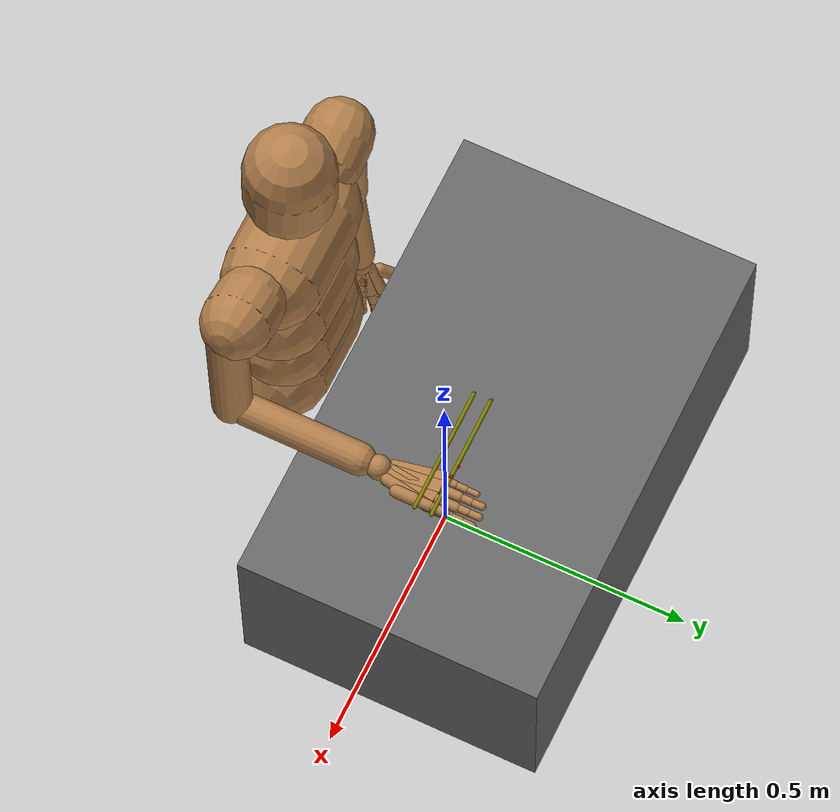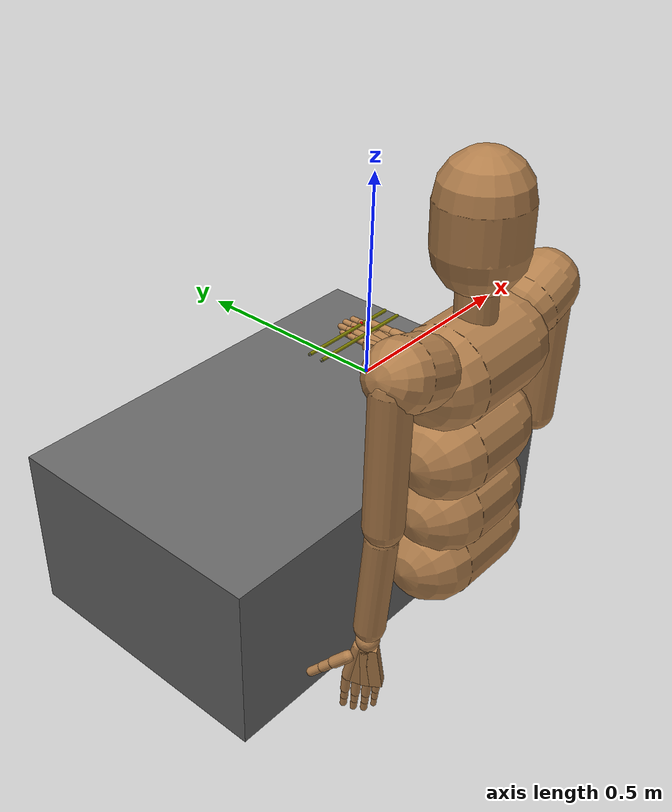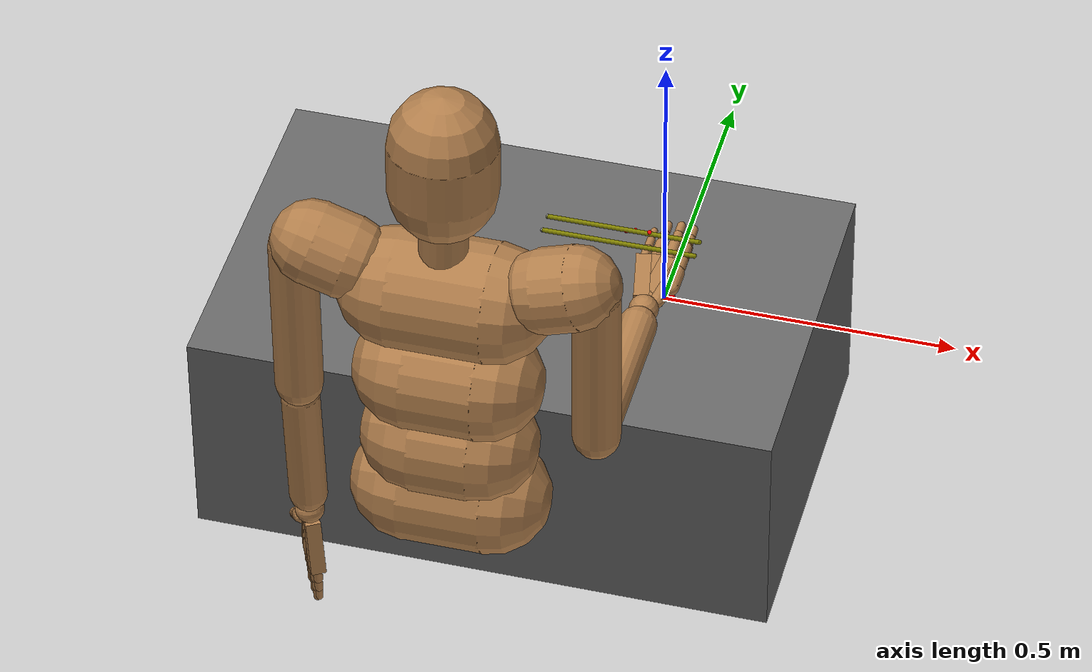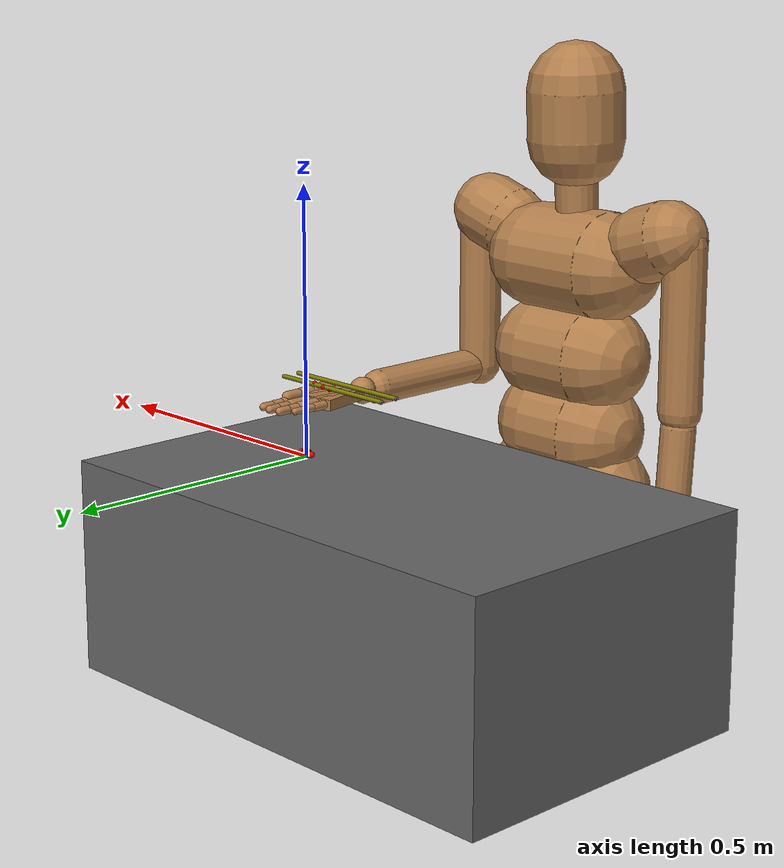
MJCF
<?xml version="1.0" encoding="utf-8"?>
<mujoco>
	<compiler angle="radian"/>
	<size njmax="400" nconmax="400" nuser_jnt="1" nuser_site="1" nuser_tendon="1" nuser_sensor="1" nuser_actuator="16" nstack="600000"/>
	<option timestep="0.01" iterations="20" apirate="200" impratio="1" noslip_iterations="100"/>
	<asset>
		<material name="self" rgba=".7 .5 .3 1"/>
		<material name="table" rgba=".4 .4 .4 1"/>
		<material name="geom" texture="texgeom" texuniform="true"/>
		<material name="MatGnd" reflectance="0.5" texture="texplane" texrepeat="2 2" texuniform="true"/>
		<material name="MatPlane" reflectance="0.05" texture="texplane" texrepeat="1 1" texuniform="true"/>
		<texture builtin="flat" height="1278" mark="cross" markrgb="1 1 1" name="texgeom" random="0.01" rgb1="0.8 0.6 0.4" rgb2="0.8 0.6 0.4" type="cube" width="127"/>
		<texture builtin="gradient" height="100" rgb1="1 1 1" rgb2="0 0 0" type="skybox" width="100"/>
		<texture name="texplane" type="2d" builtin="checker" rgb1=".2 .3 .4" rgb2=".1 0.15 0.2" width="512" height="512"/>
	</asset>
	<visual>
		<scale forcewidth="0.01" contactwidth="0.003"/>
	</visual>
	<default>
		<default class="Adroit">
			<geom friction="1 0.005 0.001" condim="3" margin="0.000" contype="1" conaffinity="1"/>
			<joint limited="true" damping="0.05" armature=".001" margin="0.01" frictionloss="0.001"/>
			<tendon limited="true"></tendon>
			<site size="0.005" rgba=".4 .9 .4 0"/>
			<default class="D_Touch">
				<site type="box" size="0.009 0.004 0.013" pos="0 -.004 .018" rgba=".8 .8 .8 0" group="4"/>
			</default>
			<default class="DC_Hand">
				<geom contype="1" conaffinity="0" material="self" group="2"/>
			</default>
		</default>
		<default class="humanoid">
			<geom type="capsule" material="self" group="2"/>
			<default class="stiff_medium">
				<joint stiffness="10" damping="2"/>
			</default>
			<default class="sensor_site">
				<site type="sphere" size="0.01" group="4" rgba="1 0 0 0"/>
			</default>
		</default>
	</default>
	<contact>
		<include file="contacts/hand_contacts.xml"/>
		<include file="contacts/hand_chopsticks_contacts.xml"/>
		<pair geom1="chopstick1_end" geom2="object_0" margin="10" gap="100"></pair>
		<pair geom1="chopstick2_end" geom2="object_0" margin="10" gap="100"></pair>
		<pair geom1="chopstick1" geom2="object_0" margin="0" gap="0" condim="4" solimp="0.99 0.99 0.01" solref="0.01 1"></pair>
		<pair geom1="chopstick2" geom2="object_0" margin="0" gap="0" condim="4" solimp="0.99 0.99 0.01" solref="0.01 1"></pair>
		<pair geom1="chopstick1_end" geom2="object_1" margin="10" gap="100"></pair>
		<pair geom1="chopstick2_end" geom2="object_1" margin="10" gap="100"></pair>
		<pair geom1="chopstick1" geom2="object_1" margin="0" gap="0" condim="4" solimp="0.99 0.99 0.01" solref="0.01 1"></pair>
		<pair geom1="chopstick2" geom2="object_1" margin="0" gap="0" condim="4" solimp="0.99 0.99 0.01" solref="0.01 1"></pair>
		<pair geom1="chopstick1_end" geom2="object_2" margin="10" gap="100"></pair>
		<pair geom1="chopstick2_end" geom2="object_2" margin="10" gap="100"></pair>
		<pair geom1="chopstick1" geom2="object_2" margin="0" gap="0" condim="4" solimp="0.99 0.99 0.01" solref="0.01 1"></pair>
		<pair geom1="chopstick2" geom2="object_2" margin="0" gap="0" condim="4" solimp="0.99 0.99 0.01" solref="0.01 1"></pair>
		<pair geom1="chopstick1_end" geom2="object_3" margin="10" gap="100"></pair>
		<pair geom1="chopstick2_end" geom2="object_3" margin="10" gap="100"></pair>
		<pair geom1="chopstick1" geom2="object_3" margin="0" gap="0" condim="4" solimp="0.99 0.99 0.01" solref="0.01 1"></pair>
		<pair geom1="chopstick2" geom2="object_3" margin="0" gap="0" condim="4" solimp="0.99 0.99 0.01" solref="0.01 1"></pair>
		<pair geom1="chopstick1_end" geom2="object_4" margin="10" gap="100"></pair>
		<pair geom1="chopstick2_end" geom2="object_4" margin="10" gap="100"></pair>
		<pair geom1="chopstick1" geom2="object_4" margin="0" gap="0" condim="4" solimp="0.99 0.99 0.01" solref="0.01 1"></pair>
		<pair geom1="chopstick2" geom2="object_4" margin="0" gap="0" condim="4" solimp="0.99 0.99 0.01" solref="0.01 1"></pair>
	</contact>
	<tendon>
		<include file="hand_tendon.xml"/>
	</tendon>
	<sensor>
		<touch name="sensor_end1" site="end1"/>
		<touch name="sensor_end2" site="end2"/>
		<touch name="sensor_th" site="S_thtip"/>
		<touch name="sensor_ff" site="S_fftip"/>
		<touch name="sensor_mf" site="S_mftip"/>
		<touch name="sensor_rf" site="S_rftip"/>
		<touch name="sensor_lf" site="S_lftip"/>
	</sensor>
	<actuator>
		<include file="hand_actuators.xml"/>
	</actuator>
	<worldbody>
		<light diffuse="1 1 1" dir="-0 1.3 -1.3" directional="true" exponent="1" pos="0 0 1.3" specular=".1 .1 .1" castshadow="false"></light>
		<geom name="table" pos="-0.24 0 -0.2" size="0.5 0.315 0.2" material="table" type="box" contype="1" conaffinity="1"/>
		<include file="body/arm.xml"/>
		<body name="chopstick1" pos="-0.07 -0.0 0.14" user="0.035503229090770326 -0.06113577730420004 0.09101872757130249 0.5588906933498429 0.5294254446740649 0.4990982547213093 0.39780752073426606">
			<joint name="chopstick1" type="free" armature="0.0001"/>
			<geom name="chopstick1" density="1000" condim="4" size="0.004 0.13" pos="0.0 -0.0 0.0" type="capsule" quat="0.707 0 0.707 0" solimp="0.99 0.99 0.01" solref="0.01 1" friction="1 0.005 0.0001" rgba="0.5  0.5 0. 1"/>
			<geom name="chopstick1_end" density="1" size="0.004" pos="-0.13 -0.0 0.0" type="sphere" quat="0.707 0 0.707 0"/>
			<site name="end1" pos="-0.13 0.0 0.00" size=".01" type="sphere" rgba="0.5 0 0 0."/>
			<site name="c_joint" pos="0.045 0.0 0.0" size=".004" type="sphere"/>
		</body>
		<body name="chopstick2" pos="-0.07 -0.035 0.14" user="0.035503229090770326 -0.06113577730420004 0.09101872757130249 0.5588906933498429 0.5294254446740649 0.4990982547213093 0.39780752073426606">
			<joint name="chopstick2" type="free" armature="0.0001"/>
			<geom name="chopstick2" density="1000" condim="4" size="0.004 0.13" pos="-0.0 -0.0 0.0" type="capsule" quat="0.707 0 0.707 0" solimp="0.99 0.99 0.01" solref="0.01 1" friction="1 0.005 0.0001" rgba="0.5  0.5 0. 1"/>
			<geom name="chopstick2_end" density="1" size="0.004" pos="-0.13 -0.0 0.0" type="sphere" quat="0.707 0 0.707 0"/>
			<site name="end2" pos="-0.13 0.0 0.0" size=".01" type="sphere" rgba="0.5 0 0 0."/>
			<site name="origin" pos="-0. 0.0 0.0" size=".01" type="sphere" rgba="1 0 0 0."/>
		</body>
		<body name="chopstick2_v" pos="-0.07 -0.035 0.14">
			<joint name="chopstick2_v" type="free" armature="0.0001"/>
			<geom name="chopstick2_v" density="1000" condim="4" size="0.004 0.13" pos="0.0 -0.0 0.0" type="capsule" contype="0" conaffinity="0" solimp="0.99 0.99 0.01" solref="0.01 1" quat="0.707 0 0.707 0" friction="1 0.005 0.0001" rgba="0  0.5 0. 0.7"/>
			<site name="origin_v" pos="-0. 0.0 0.0" size=".01" type="sphere" rgba="0 0 0 0."/>
			<site name="end2_v" pos="-0.13 0.0 0.00" size=".0025" type="sphere" group="4"/>
			<body name="chopstick1_v" pos="0.045 0.035 0.0">
				<joint name="Rz1_v" armature=".01" type="hinge" pos="0 0 0" axis="0 0 1" range="-0.5 0.5"/>
				<geom name="chopstick1_v" density="1000" condim="4" size="0.004 0.13" pos="-0.045 -0.0 0.0" type="capsule" contype="0" conaffinity="0" solimp="0.99 0.99 0.01" solref="0.01 1" quat="0.707 0 0.707 0" friction="1 0.005 0.0001" rgba="0  0.5 0. 0.7"/>
				<site name="c_thtip_v" pos="0.0 0.0 0.0025" size=".004" type="sphere" rgba="1 0 0 1"/>
				<site name="c_mftip_v" pos="-0.04 0.0 -0.0025" size=".004" type="sphere" rgba="1 0 0 1"/>
				<site name="c_fftip_v" pos="-0.025 0.0025 0.00" size=".004" type="sphere" rgba="1 0 0 1"/>
				<site name="end1_v" pos="-0.175 0.0 0.0" size=".0025" type="sphere" group="4"/>
			</body>
		</body>
		<body name="root" pos="-0.25 -0.44 0.02" euler="1.57 0 0" childclass="humanoid">
			<body name="lowerback">
				<body name="upperback" pos="0.000565862 0.113213 0">
					<geom name="upperback" size="0.1 0.07" pos="0.000256264 -0.22 0" quat="0.707 0 0.707 0" contype="0" conaffinity="0"/>
					<body name="thorax" pos="0.000512528 0.11356 0.000">
						<geom name="thorax1" size="0.1 0.05" pos="-2.08988e-05 -0.22 0" quat="0.707 0 0.707 0" contype="0" conaffinity="0"/>
						<geom name="thorax2" size="0.1 0.06" pos="-2.08988e-05 -0.08 0" quat="0.707 0 0.707 0" contype="0" conaffinity="0"/>
						<body name="lowerneck" pos="-4.17976e-05 0.113945 0.0">
							<geom name="lowerneck" size="0.1 0.08" pos="-0.00165071 -0.02 0." quat="0.707 0 0.707 0" contype="0" conaffinity="0"/>
							<body name="upperneck" pos="-0.00330143 0.1104801 0.0">
								<geom name="upperneck" size="0.04 0.0525272" pos="0.000500875 0.0 -0.0" quat="0.724521 0.68921 -0.00767204 0" contype="0" conaffinity="0"/>
								<body name="head" pos="0.00100175 0.0899912 -0.00449288">
									<geom name="head" size="0.09 0.044104" pos="0.000341465 0.048184 -0.0" quat="0.717887 0.696142 -0.00493334 0" contype="0" conaffinity="0"/>
								</body>
							</body>
						</body>
						<body name="lclavicle" pos="-4.17976e-05 0.113945 0.00468037">
							<geom name="lclavicle" size="0.07 0.02986988" pos="0.19 0.0382636 0." quat="0.684 -0.1106 0.6984 0.1106" contype="0" conaffinity="0"/>
						</body>
						<body name="rclavicle" pos="-4.17976e-05 0.113945 0.00468037">
							<geom name="rclavicle" size="0.07 0.02986988" pos="-0.19 0.0382636 0." quat="0.698 0.110 0.698 -0.11" contype="0" conaffinity="0"/>
						</body>
					</body>
				</body>
			</body>
		</body>
		<body name="hand mount right" pos="-0.5 -.45 0.2" euler="-1.57079632 0 0">
			<body name="upperarm_right" childclass="Adroit" pos="0 -0.2 0">
				<body name="upperarm2_right" pos="0 0 0">
					<body name="upperarm3_right" pos="0 0 0" euler="0 0 -0. ">
						<geom class="DC_Hand" name="C_upperarm_right" type="capsule" size="0.04 0.15 " pos="0 0.15 0" euler="-1.57 0 0"/>
						<body name="forearm_right" childclass="Adroit" pos="0 0.3 0" euler="-1.5 -0. -0.5 ">
							<geom class="DC_Hand" name="C_forearm_right" type="capsule" size="0.0325 0.12 " pos="0 -.0 0.15" euler="0 0 -1.57"/>
							<body name="wrist_right" pos="0 0 0.3" euler="0 0 0">
								<body name="wrist1_right" pos="0 0 0">
									<geom class="DC_Hand" name="C_wrist1_right" type="sphere" size="0.001"/>
									<body name="wrist2_right" pos="0 0 0" euler="0  0 -1.57 ">
										<geom class="DC_Hand" name="C_wrist_right" type="sphere" pos="0 0 0.01" quat=".707 .707 0 0" size=".025"/>
										<body name="palm_right" pos="0 0 0.034">
											<body name="ff_cmc_right" pos="0.033 0 0.095">
												<geom class="DC_Hand" name="C_ff_cmc_right" type="capsule" pos="-0.01 0 -0.0475" size="0.013 .0475" euler="0 0.16 0"/>
												<body name="ffknuckle_right" pos="0.0 0 0.0">
													<body name="ffproximal_right" pos="0 0 0">
														<inertial pos="0.000 0.000 0.023" quat="0.707 -0.004 0.004 0.707" mass="0.014" diaginertia="0.00001 0.00001 0.00001"></inertial>
														<geom class="DC_Hand" name="C_ffproximal_right" type="capsule" pos="0 0 .0225" size=".01 .0225"/>
														<body name="ffmiddle_right" pos="0 0 0.045">
															<geom class="DC_Hand" name="C_ffmiddle_right" type="capsule" pos="0 0 .0125" size=".00805 .0125"/>
															<body name="ffdistal_right" pos="0 0 0.025">
																<geom class="DC_Hand" name="C_ffdistal_right" type="capsule" pos="0 -.00 .012" size=".0075 .011 " condim="4" euler="0 0 0"/>
															</body>
														</body>
													</body>
												</body>
											</body>
											<body name="mf_cmc_right" pos="0.011 0 0.099">
												<geom class="DC_Hand" name="C_mf_cmc_right" type="box" pos="-0.0055 0 -0.0495" size=".013 0.013 .052" euler="0 0.11 0"/>
												<body name="mfknuckle_right" pos="0.0 0 0.0">
													<inertial pos="-0.000 0.000 0.000" quat="0.520 0.854 0.006 -0.003" mass="0.008" diaginertia="0.00001 0.00001 0.00001"></inertial>
													<body name="mfproximal_right" pos="0 0 0">
														<geom class="DC_Hand" name="C_mfproximal_right" type="capsule" pos="0 0 .0225" size=".01 .0225"/>
														<body name="mfmiddle_right" pos="0 0 0.045">
															<geom class="DC_Hand" name="C_mfmiddle_right" type="capsule" pos="0 0 .0125" size=".00805 .0125"/>
															<body name="mfdistal_right" pos="0 0 0.025">
																<geom class="DC_Hand" name="C_mfdistal_right" type="capsule" pos="0 0 .012" size=".0075 .011 " condim="4" euler="0 0 0"/>
															</body>
														</body>
													</body>
												</body>
											</body>
											<body name="rf_cmc_right" pos="-0.011 0 0.095">
												<geom class="DC_Hand" name="C_rf_cmc_right" type="box" pos="0.0055 0 -0.0475" size=".013  0.013 .055" euler="0 -0.11 0"/>
												<body name="rfknuckle_right" pos="-0.0 0 0.0">
													<body name="rfproximal_right" pos="0 0 0">
														<geom class="DC_Hand" name="C_rfproximal_right" type="capsule" pos="0 0 .0225" size=".01 .0225"/>
														<body name="rfmiddle_right" pos="0 0 0.045">
															<geom class="DC_Hand" name="C_rfmiddle_right" type="capsule" pos="0 0 .0125" size=".00805 .0125"/>
															<body name="rfdistal_right" pos="0 0 0.025">
																<geom class="DC_Hand" name="C_rfdistal_right" type="capsule" pos="0 -.0 .012" size=".0075 .011 " condim="4" euler="0 0 0"/>
															</body>
														</body>
													</body>
												</body>
											</body>
											<body name="thbase_right" pos="0.034 -0.009 0.029" axisangle="0  1 0  0.785">
												<body name="thproximal_right" pos="0 0 0">
													<geom class="DC_Hand" name="C_thproximal_right" type="capsule" pos="0 0 .019" size=".013 .019"/>
													<body name="thmiddle_right" pos="0 0 0.038">
														<geom class="DC_Hand" name="C_thm_right" type="capsule" pos="0 0 .016" size=".011 .016"/>
														<body name="thdistal_right" pos="0 0 0.032">
															<geom class="DC_Hand" name="C_thdistal_right" type="capsule" pos="0 0 .016837" size=".01 .015" condim="4" euler="0 0 0"/>
														</body>
													</body>
												</body>
											</body>
											<body name="lf_cmc_right" pos="-0.03 0 0.095">
												<geom class="DC_Hand" name="C_lf_cmc_right" type="box" pos="0.01 0 -0.0475" size=".013 0.013 .052" euler="0 -0.2 0"/>
												<body name="lfknuckle_right" pos="-0.0 0 0.0">
													<body name="lfproximal_right" pos="0 0 0">
														<geom class="DC_Hand" name="C_lfproximal_right" type="capsule" pos="0 0 .0125" size=".008 .015"/>
														<body name="lfmiddle_right" pos="0 0 0.025">
															<geom class="DC_Hand" name="C_lfmiddle_right" type="capsule" pos="0 0 .0125" size=".00705 .0125"/>
															<body name="lfdistal_right" pos="0 0 0.025">
																<geom class="DC_Hand" name="C_lfdistal_right" type="capsule" pos="0 0 .012" size=".006 .011 " condim="4" euler="0 0 0"/>
															</body>
														</body>
													</body>
												</body>
											</body>
										</body>
									</body>
								</body>
							</body>
						</body>
					</body>
				</body>
			</body>
		</body>
		<body name="object_0" pos="0.0 0.0 0.006397251546893879" quat="1.0 0.0 0.0 0.0">
			<joint name="object_0" type="free" armature="0.00001"/>
			<geom name="object_0" size="0.006397251546893879" pos="0 0 0" type="sphere" rgba="1 0 0 1"/>
		</body>
		<body name="object_1" pos="0.0 0.0 0.005897735961326833" quat="1.0 0.0 0.0 0.0">
			<joint name="object_1" type="free" armature="0.00001"/>
			<geom name="object_1" size="0.005897735961326833 0.008216109211294315" pos="0 0 0" type="capsule" rgba="1 0 0 1" quat="0.707 0 0.707 0"/>
		</body>
		<body name="object_2" pos="0.0 0.0 0.00600650089120077" quat="1.0 0.0 0.0 0.0">
			<joint name="object_2" type="free" armature="0.00001"/>
			<geom name="object_2" size="0.006138290604181489 0.006535021945915189 0.00600650089120077" pos="0 0 0" type="box" rgba="1 0 0 1" quat="0.707 0 0.707 0"/>
		</body>
		<body name="object_3" pos="0.0 0.0 0.006775424825525276" quat="1.0 0.0 0.0 0.0">
			<joint name="object_3" type="free" armature="0.00001"/>
			<geom name="object_3" size="0.006775424825525276" pos="0 0 0" type="sphere" rgba="1 0 0 1" quat="0.707 0 0.707 0"/>
		</body>
		<body name="object_4" pos="0.0 0.0 0.005688090507042182" quat="1.0 0.0 0.0 0.0">
			<joint name="object_4" type="free" armature="0.00001"/>
			<geom name="object_4" size="0.005688090507042182 0.014368830914503791" pos="0 0 0" type="capsule" rgba="1 0 0 1" quat="0.707 0 0.707 0"/>
		</body>
	</worldbody>
</mujoco>

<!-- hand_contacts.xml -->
<mujoco>
<pair geom1="C_rfmiddle" geom2="C_mf" margin="10" gap="100"/>
<pair geom1="C_rfmiddle" geom2="C_mfdistal" margin="10" gap="100"/>
<pair geom1="C_rfmiddle" geom2="C_mfmiddle" margin="10" gap="100"/>
<pair geom1="C_rfmiddle" geom2="C_mfproximal" margin="10" gap="100"/>
<pair geom1="C_rfdistal" geom2="C_mf" margin="10" gap="100"/>
<pair geom1="C_rfdistal" geom2="C_mfmiddle" margin="10" gap="100"/>
<pair geom1="C_rfdistal" geom2="C_mfproximal" margin="10" gap="100"/>
<pair geom1="C_rfproximal" geom2="C_mf" margin="10" gap="100"/>
<pair geom1="C_rfproximal" geom2="C_mfdistal" margin="10" gap="100"/>
<pair geom1="C_rfproximal" geom2="C_mfmiddle" margin="10" gap="100"/>
<pair geom1="C_rfproximal" geom2="C_mfproximal" margin="10" gap="100"/>
<pair geom1="C_mfmiddle" geom2="C_ff" margin="10" gap="100"/>
<pair geom1="C_mfmiddle" geom2="C_ffdistal" margin="10" gap="100"/>
<pair geom1="C_mfmiddle" geom2="C_ffmiddle" margin="10" gap="100"/>
<pair geom1="C_mfmiddle" geom2="C_ffproximal" margin="10" gap="100"/>
<pair geom1="C_mfdistal" geom2="C_ff" margin="10" gap="100"/>
<pair geom1="C_mfdistal" geom2="C_ffmiddle" margin="10" gap="100"/>
<pair geom1="C_mfdistal" geom2="C_ffproximal" margin="10" gap="100"/>
<pair geom1="C_mfproximal" geom2="C_ff" margin="10" gap="100"/>
<pair geom1="C_mfproximal" geom2="C_ffdistal" margin="10" gap="100"/>
<pair geom1="C_mfproximal" geom2="C_ffmiddle" margin="10" gap="100"/>
<pair geom1="C_mfproximal" geom2="C_ffproximal" margin="10" gap="100"/>
<pair geom1="C_rfmiddle" geom2="C_lf" margin="10" gap="100"/>
<pair geom1="C_rfmiddle" geom2="C_lfdistal" margin="10" gap="100"/>
<pair geom1="C_rfmiddle" geom2="C_lfmiddle" margin="10" gap="100"/>
<pair geom1="C_rfmiddle" geom2="C_lfproximal" margin="10" gap="100"/>
<pair geom1="C_rfdistal" geom2="C_lf" margin="10" gap="100"/>
<pair geom1="C_rfdistal" geom2="C_lfmiddle" margin="10" gap="100"/>
<pair geom1="C_rfdistal" geom2="C_lfproximal" margin="10" gap="100"/>
<pair geom1="C_rfproximal" geom2="C_lf" margin="10" gap="100"/>
<pair geom1="C_rfproximal" geom2="C_lfdistal" margin="10" gap="100"/>
<pair geom1="C_rfproximal" geom2="C_lfmiddle" margin="10" gap="100"/>
<pair geom1="C_rfproximal" geom2="C_lfproximal" margin="10" gap="100"/>
</mujoco>

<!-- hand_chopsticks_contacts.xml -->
<mujoco>
<pair geom1="chopstick1" geom2="C_ff" margin="10" gap="100"></pair>
<pair geom1="chopstick1" geom2="C_mf" margin="10" gap="100"></pair>
<pair geom1="chopstick1" geom2="C_th" margin="10" gap="100"></pair>
<pair geom1="chopstick2" geom2="C_rf" margin="10" gap="100"></pair>
<pair geom1="chopstick2" geom2="C_lf" margin="10" gap="100"></pair>
<pair geom1="chopstick2" geom2="C_thm" margin="10" gap="100"></pair>
<pair geom1="chopstick1" geom2="C_ffproximal" condim="3" margin="0" gap="0"></pair>
<pair geom1="chopstick1" geom2="C_ffproximal_trick" margin="10" gap="100"></pair>
<pair geom1="chopstick2" geom2="C_ff_cmc" condim="4" margin="0" gap="0"></pair>
<pair geom1="chopstick1" geom2="C_ffdistal" condim="4" margin="0" gap="0"></pair>
<pair geom1="chopstick1" geom2="C_mfdistal" condim="4" margin="0" gap="0"></pair>
<pair geom1="chopstick1" geom2="C_thdistal" condim="4" margin="0" gap="0"></pair>
<pair geom1="chopstick2" geom2="C_thdistal" condim="4" margin="0" gap="0"></pair>
<pair geom1="chopstick2" geom2="C_rfdistal" condim="4" margin="0" gap="0"></pair>
<pair geom1="chopstick2" geom2="C_thmiddle" condim="4" margin="0" gap="0"></pair>
<pair geom1="chopstick2" geom2="C_lfdistal" condim="4" margin="0" gap="0"></pair>
</mujoco>

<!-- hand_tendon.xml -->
<mujoco>
<fixed name="T_FFJ3r" range="-0.018 0.018" user="1204">
	<joint joint="FFJ3" coef="0.010"/>
</fixed>
<fixed name="T_FFJ3l" range="-0.018 0.018" user="1205">
	<joint joint="FFJ3" coef="-0.010"/>
</fixed>
<fixed name="T_FFJ2u" range="-0.007 0.030" user="1202">
	<joint joint="FFJ2" coef="0.010"/>
</fixed>
<fixed name="T_FFJ2d" range="-0.030 0.007" user="1203">
	<joint joint="FFJ2" coef="-0.010"/>
</fixed>
<fixed name="T_FFJ1c" range="-0.0010 0.0010">
	<joint joint="FFJ0" coef="0.00705"/>
	<joint joint="FFJ1" coef="-0.00805"/>
</fixed>
<fixed name="T_FFJ1u" range="-0.007 0.030" user="1200">
	<joint joint="FFJ0" coef="0.00705"/>
	<joint joint="FFJ1" coef="0.00805"/>
</fixed>
<fixed name="T_FFJ1d" range="-0.030 0.007" user="1201">
	<joint joint="FFJ0" coef="-0.00705"/>
	<joint joint="FFJ1" coef="-0.00805"/>
</fixed>
<fixed name="T_MFJ3r" range="-0.018 0.018" user="1210">
	<joint joint="MFJ3" coef="0.010"/>
</fixed>
<fixed name="T_MFJ3l" range="-0.018 0.018" user="1211">
	<joint joint="MFJ3" coef="-0.010"/>
</fixed>
<fixed name="T_MFJ2u" range="-0.007 0.030" user="1208">
	<joint joint="MFJ2" coef="0.010"/>
</fixed>
<fixed name="T_MFJ2d" range="-0.030 0.007" user="1209">
	<joint joint="MFJ2" coef="-0.010"/>
</fixed>
<fixed name="T_MFJ1c" range="-0.001 0.001">
	<joint joint="MFJ0" coef="0.00705"/>
	<joint joint="MFJ1" coef="-0.00805"/>
</fixed>
<fixed name="T_MFJ1u" range="-0.007 0.030" user="1206">
	<joint joint="MFJ0" coef="0.00705"/>
	<joint joint="MFJ1" coef="0.00805"/>
</fixed>
<fixed name="T_MFJ1d" range="-0.030 0.007" user="1207">
	<joint joint="MFJ0" coef="-0.00705"/>
	<joint joint="MFJ1" coef="-0.00805"/>
</fixed>
<fixed name="T_RFJ3r" range="-0.018 0.018" user="1216">
	<joint joint="RFJ3" coef="0.010"/>
</fixed>
<fixed name="T_RFJ3l" range="-0.018 0.018" user="1217">
	<joint joint="RFJ3" coef="-0.010"/>
</fixed>
<fixed name="T_RFJ2u" range="-0.007 0.030" user="1214">
	<joint joint="RFJ2" coef="0.010"/>
</fixed>
<fixed name="T_RFJ2d" range="-0.030 0.007" user="1215">
	<joint joint="RFJ2" coef="-0.010"/>
</fixed>
<fixed name="T_RFJ1c" range="-0.001 0.001">
	<joint joint="RFJ0" coef="0.00705"/>
	<joint joint="RFJ1" coef="-0.00805"/>
</fixed>
<fixed name="T_RFJ1u" range="-0.007 0.030" user="1212">
	<joint joint="RFJ0" coef="0.00705"/>
	<joint joint="RFJ1" coef="0.00805"/>
</fixed>
<fixed name="T_RFJ1d" range="-0.030 0.007" user="1213">
	<joint joint="RFJ0" coef="-0.00705"/>
	<joint joint="RFJ1" coef="-0.00805"/>
</fixed>
<fixed name="T_THJ4a" range="-0.018 0.018" user="1234">
	<joint joint="THJ4" coef="0.01636"/>
</fixed>
<fixed name="T_THJ4c" range="-0.018 0.018" user="1235">
	<joint joint="THJ4" coef="-0.01636"/>
</fixed>
<fixed name="T_THJ3u" range="-0.007 0.030" user="1232">
	<joint joint="THJ3" coef="0.010"/>
</fixed>
<fixed name="T_THJ3d" range="-0.030 0.007" user="1233">
	<joint joint="THJ3" coef="-0.010"/>
</fixed>
<fixed name="T_THJ2u" range="-0.018 0.018" user="1230">
	<joint joint="THJ2" coef="0.011"/>
</fixed>
<fixed name="T_THJ2d" range="-0.018 0.018" user="1231">
	<joint joint="THJ2" coef="-0.011"/>
</fixed>
<fixed name="T_THJ1r" range="-0.018 0.018" user="1228">
	<joint joint="THJ1" coef="0.011"/>
</fixed>
<fixed name="T_THJ1l" range="-0.018 0.018" user="1229">
	<joint joint="THJ1" coef="-0.011"/>
</fixed>
<fixed name="T_THJ0r" range="-0.030 0.007" user="1226">
	<joint joint="THJ0" coef="0.009"/>
</fixed>
<fixed name="T_THJ0l" range="-0.007 0.030" user="1227">
	<joint joint="THJ0" coef="-0.009"/>
</fixed>
<fixed name="T_LFJ3r" range="-0.018 0.018">
	<joint joint="LFJ3" coef="0.010"/>
</fixed>
<fixed name="T_LFJ3l" range="-0.018 0.018">
	<joint joint="LFJ3" coef="-0.010"/>
</fixed>
<fixed name="T_LFJ2u" range="-0.007 0.030">
	<joint joint="LFJ2" coef="0.010"/>
</fixed>
<fixed name="T_LFJ2d" range="-0.030 0.007">
	<joint joint="LFJ2" coef="-0.010"/>
</fixed>
<fixed name="T_LFJ1c" range="-0.001 0.001">
	<joint joint="LFJ0" coef="0.00705"/>
	<joint joint="LFJ1" coef="-0.00805"/>
</fixed>
<fixed name="T_LFJ1u" range="-0.007 0.030">
	<joint joint="LFJ0" coef="0.00705"/>
	<joint joint="LFJ1" coef="0.00805"/>
</fixed>
<fixed name="T_LFJ1d" range="-0.030 0.007">
	<joint joint="LFJ0" coef="-0.00705"/>
	<joint joint="LFJ1" coef="-0.00805"/>
</fixed>
</mujoco>

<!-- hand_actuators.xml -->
<mujoco>
<motor name="A_UARM1" joint="UARM1" ctrlrange="-100   100" gear="1"/>
<motor name="A_UARM2" joint="UARM2" ctrlrange="-100   100" gear="1"/>
<motor name="A_UARM3" joint="UARM3" ctrlrange="-100   100" gear="1"/>
<motor name="A_FARM1" joint="FARM1" ctrlrange="-100   100" gear="1"/>
<motor name="A_WRJ0" user="2036" joint="WRJ0" ctrlrange="-50   50" gear="1"/>
<motor name="A_WRJ1" user="2038" joint="WRJ1" ctrlrange="-50   50" gear="1"/>
<motor name="A_WRJ2" joint="WRJ2" ctrlrange="-50   50" gear="1"/>
<motor name="A_FFJ_CMC_X" joint="FFJ_CMC_X" ctrlrange="-10   10" gear="1"/>
<motor name="A_FFJ_CMC_Z" joint="FFJ_CMC_Z" ctrlrange="-10   10" gear="1"/>
<motor name="A_FFJ3" user="2004" joint="FFJ3" ctrlrange="-10   10" gear="1"/>
<motor name="A_FFJ2" user="2002" joint="FFJ2" ctrlrange="-10      10 " gear="1"/>
<motor name="A_FFJ1" user="2000" joint="FFJ1" ctrlrange="-10       10 " gear="1"/>
<motor name="A_FFJ0" user="2000" joint="FFJ0" ctrlrange="-10     10 " gear="1"/>
<motor name="A_MFJ_CMC_X" joint="MFJ_CMC_X" ctrlrange="-10   10" gear="1"/>
<motor name="A_MFJ_CMC_Z" joint="MFJ_CMC_Z" ctrlrange="-10   10" gear="1"/>
<motor name="A_MFJ3" user="2010" joint="MFJ3" ctrlrange="-10   10" gear="1"/>
<motor name="A_MFJ2" user="2008" joint="MFJ2" ctrlrange="-10       10 " gear="1"/>
<motor name="A_MFJ1" user="2006" joint="MFJ1" ctrlrange="-10       10 " gear="1"/>
<motor name="A_MFJ0" user="2006" joint="MFJ0" ctrlrange="-10       10 " gear="1"/>
<motor name="A_RFJ_CMC_X" joint="RFJ_CMC_X" ctrlrange="-10   10" gear="1"/>
<motor name="A_RFJ_CMC_Z" joint="RFJ_CMC_Z" ctrlrange="-10   10" gear="1"/>
<motor name="A_RFJ3" user="2016" joint="RFJ3" ctrlrange="-10   10" gear="1"/>
<motor name="A_RFJ2" user="2014" joint="RFJ2" ctrlrange="-10       10 " gear="1"/>
<motor name="A_RFJ1" user="2012" joint="RFJ1" ctrlrange="-10       10 " gear="1"/>
<motor name="A_RFJ0" user="2012" joint="RFJ0" ctrlrange="-10       10 " gear="1"/>
<motor name="A_THJ4" user="2034" joint="THJ4" ctrlrange="-10      10   " gear="1"/>
<motor name="A_THJ3" user="2032" joint="THJ3" ctrlrange="-10      10 " gear="1"/>
<motor name="A_THJ2" user="2030" joint="THJ2" ctrlrange="-10   10" gear="1"/>
<motor name="A_THJ1" user="2028" joint="THJ1" ctrlrange="-10   10" gear="1"/>
<motor name="A_THJ0" user="2026" joint="THJ0" ctrlrange="-10  10   " gear="1"/>
<motor name="A_LFJ_CMC_X" joint="LFJ_CMC_X" ctrlrange="-10   10" gear="1"/>
<motor name="A_LFJ_CMC_Z" joint="LFJ_CMC_Z" ctrlrange="-10   10" gear="1"/>
<motor name="A_LFJ3" user="2022" joint="LFJ3" ctrlrange="-10      10 " gear="1"/>
<motor name="A_LFJ2" user="2020" joint="LFJ2" ctrlrange="-10      10 " gear="1"/>
<motor name="A_LFJ1" user="2019" joint="LFJ1" ctrlrange="-10      10 " gear="1"/>
<motor name="A_LFJ0" user="2018" joint="LFJ0" ctrlrange="-10      10 " gear="1"/>
</mujoco>

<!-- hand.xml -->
<mujoco>
<body name="wrist" pos="-0.0 0 0.3">
	<inertial pos="0.003 0.000 0.016" quat="0.504 0.496 0.495 0.504" mass="0.3" diaginertia="0.001 0.001 0.001"/>
	<joint name="WRJ0" type="hinge" pos="0 0 0" axis="1 0 0" range="-1 1" damping="0" armature=".005" user="1122"/>
	<body name="wrist1" pos="0 0 0">
		<joint name="WRJ1" type="hinge" pos="0 0 0" axis="0 1 0" range="-1.2 1.2" damping="0" armature=".005" user="1123"/>
		<geom class="DC_Hand" name="C_wrist1" type="sphere" size="0.001"/>
		<body name="wrist2" pos="0 0 0">
			<joint name="WRJ2" type="hinge" pos="0 0 0" axis="0 0 1" range="-3.14 0" damping="0" armature=".005"/>
			<geom class="DC_Hand" name="C_wrist" type="sphere" pos="0 0 0.01" quat=".707 .707 0 0" size=".025"/>
			<body name="palm" pos="0 0 0.034">
				<body name="ff_cmc" pos="0.033 0 0.095">
					<joint name="FFJ_CMC_X" type="hinge" pos="-0.02 0 -0.095" axis="0.095 0 -0.02" range="0 0.001"/>
					<joint name="FFJ_CMC_Z" type="hinge" pos="-0.02 0 -0.095" axis="0.02 0 0.095" range="-0.001 0.001"/>
					<geom class="DC_Hand" name="C_ff_cmc" type="capsule" pos="-0.01 0 -0.0475" size="0.013 .0475" euler="0 0.16 0"/>
					<geom class="DC_Hand" name="C_ff_cmc_trick" type="capsule" pos="-0.01 0 -0.0475" size="0.013 .0475" euler="0 0.16 0"/>
					<body name="ffknuckle" pos="0.0 0 0.0">
						<inertial pos="-0.000 0.000 0.000" quat="0.520 0.854 0.006 -0.003" mass="0.008" diaginertia="0.00001 0.00001 0.00001"/>
						<joint name="FFJ3" type="hinge" pos="0 0 0" axis="0 1 0" range="-0.136 0.136" user="1103"/>
						<body name="ffproximal" pos="0 0 0">
							<inertial pos="0.000 0.000 0.023" quat="0.707 -0.004 0.004 0.707" mass="0.014" diaginertia="0.00001 0.00001 0.00001"/>
							<joint name="FFJ2" type="hinge" pos="0 0 0" axis="1 0 0" range="0 1.571" user="1102"/>
							<geom class="DC_Hand" name="C_ffproximal" type="capsule" pos="0 0 .0225" size=".01 .0225"/>
							<geom class="DC_Hand" name="C_ffproximal_trick" type="capsule" pos="0 0 .0225" size=".01 .0225"/>
							<body name="ffmiddle" pos="0 0 0.045">
								<inertial pos="-0.000 -0.000 0.011" quat="0.707 0.000 -0.000 0.707" mass="0.012" diaginertia="0.00001 0.00001 0.00001"/>
								<joint name="FFJ1" type="hinge" pos="0 0 0" axis="1 0 0" range="0 1.571" user="1101"/>
								<geom class="DC_Hand" name="C_ffmiddle" type="capsule" pos="0 0 .0125" size=".00805 .0125"/>
								<body name="ffdistal" pos="0 0 0.025">
									<inertial pos="0 -0.000 0.015" quat="0.707 -0.003 0.003 0.707" mass="0.010" diaginertia="0.00001 0.00001 0.00001"/>
									<joint name="FFJ0" type="hinge" pos="0 0 0" axis="1 0 0" range="0 1.571" user="1100"/>
									<geom class="DC_Hand" name="C_ffdistal" type="capsule" pos="0 -.00 .012" size=".0075 .011 " condim="4" euler="0 0 0"/>
									<geom class="DC_Hand" name="C_ff" type="sphere" pos="0 0 .0195" size=".0075 " condim="4"/>
									<site name="S_fftip" type="capsule" pos="0 -.00 .012" size=".0075 .011 " rgba="0 0 0 0" euler="0 0 0"/>
									<site class="D_Touch" name="Tch_fftip"/>
								</body>
							</body>
						</body>
					</body>
				</body>
				<body name="mf_cmc" pos="0.011 0 0.099">
					<joint name="MFJ_CMC_X" type="hinge" pos="-0.011 0 -0.099" axis="0.099 0 -0.011" range="0 0.01"/>
					<joint name="MFJ_CMC_Z" type="hinge" pos="-0.011 0 -0.099" axis="0.011 0 0.099" range="-0.2 0.2"/>
					<geom class="DC_Hand" name="C_mf_cmc" type="box" pos="-0.0055 0 -0.0495" size=".013 0.01 .052" euler="0 0.11 0"/>
					<body name="mfknuckle" pos="0.0 0 0.0">
						<inertial pos="-0.000 0.000 0.000" quat="0.520 0.854 0.006 -0.003" mass="0.008" diaginertia="0.00001 0.00001 0.00001"/>
						<joint name="MFJ3" type="hinge" pos="0 0 0" axis="0 1 0" range="-0.136 0.136" user="1107"/>
						<body name="mfproximal" pos="0 0 0">
							<inertial pos="0.000 0.000 0.023" quat="0.707 -0.004 0.004 0.707" mass="0.014" diaginertia="0.00001 0.00001 0.00001"/>
							<joint name="MFJ2" type="hinge" pos="0 0 0" axis="1 0 0" range="0 1.571" user="1106"/>
							<geom class="DC_Hand" name="C_mfproximal" type="capsule" pos="0 0 .0225" size=".01 .0225"/>
							<body name="mfmiddle" pos="0 0 0.045">
								<inertial pos="-0.000 -0.000 0.012" quat="0.707 0.000 -0.000 0.707" mass="0.012" diaginertia="0.00001 0.00001 0.00001"/>
								<joint name="MFJ1" type="hinge" pos="0 0 0" axis="1 0 0" range="0 1.571" user="1105"/>
								<geom class="DC_Hand" name="C_mfmiddle" type="capsule" pos="0 0 .0125" size=".00805 .0125"/>
								<body name="mfdistal" pos="0 0 0.025">
									<inertial pos="0 -0.000 0.015" quat="0.707 -0.003 0.003 0.707" mass="0.010" diaginertia="0.00001 0.00001 0.00001"/>
									<joint name="MFJ0" type="hinge" pos="0 0 0" axis="1 0 0" range="0 1.571" user="1104"/>
									<geom class="DC_Hand" name="C_mfdistal" type="capsule" pos="0 0 .012" size=".0075 .011 " condim="4" euler="0 0 0"/>
									<geom class="DC_Hand" name="C_mf" type="sphere" pos="0.0 0 .018" size=".0075 " rgba="0 0 0 0"/>
									<site name="S_mftip" type="capsule" pos="0 0 .012" size=".0075 .011 " rgba="0 0 0 0" euler="0 0 0"/>
									<site class="D_Touch" name="Tch_mftip"/>
								</body>
							</body>
						</body>
					</body>
				</body>
				<body name="rf_cmc" pos="-0.011 0 0.095">
					<joint name="RFJ_CMC_X" type="hinge" pos="0.011 0 -0.095" axis="0.095 0 0.011" range="0 0.2"/>
					<joint name="RFJ_CMC_Z" type="hinge" pos="0.011 0 -0.095" axis="-0.011 0 0.095" range="-0.0 0.69"/>
					<geom class="DC_Hand" name="C_rf_cmc" type="box" pos="0.0055 0 -0.0475" size=".013  0.01 .055" euler="0 -0.11 0"/>
					<body name="rfknuckle" pos="-0.0 0 0.0">
						<inertial pos="-0.000 0.000 0.000" quat="0.520 0.854 0.006 -0.003" mass="0.008" diaginertia="0.00001 0.00001 0.00001"/>
						<joint name="RFJ3" type="hinge" pos="0 0 0" axis="0 1 0" range="-0.136 0.136" user="1111"/>
						<body name="rfproximal" pos="0 0 0">
							<inertial pos="0.000 0.000 0.023" quat="0.707 -0.004 0.004 0.707" mass="0.014" diaginertia="0.00001 0.00001 0.00001"/>
							<joint name="RFJ2" type="hinge" pos="0 0 0" axis="1 0 0" range="0 1.571" user="1110"/>
							<geom class="DC_Hand" name="C_rfproximal" type="capsule" pos="0 0 .0225" size=".01 .0225"/>
							<body name="rfmiddle" pos="0 0 0.045">
								<inertial pos="-0.000 -0.000 0.012" quat="0.707 0.000 -0.000 0.707" mass="0.012" diaginertia="0.00001 0.00001 0.00001"/>
								<joint name="RFJ1" type="hinge" pos="0 0 0" axis="1 0 0" range="0 1.571" user="1109"/>
								<geom class="DC_Hand" name="C_rfmiddle" type="capsule" pos="0 0 .0125" size=".00805 .0125"/>
								<body name="rfdistal" pos="0 0 0.025">
									<inertial pos="0 -0.000 0.015" quat="0.707 -0.003 0.003 0.707" mass="0.010" diaginertia="0.00001 0.00001 0.00001"/>
									<joint name="RFJ0" type="hinge" pos="0 0 0" axis="1 0 0" range="0 1.571" user="1108"/>
									<geom class="DC_Hand" name="C_rfdistal" type="capsule" pos="0 -.0 .012" size=".0075 .011 " condim="4" euler="0 0 0"/>
									<geom class="DC_Hand" name="C_rf" type="sphere" pos="0.0035 0 .016" size=".0075 " rgba="0 0 0 0"/>
									<site name="S_rftip" type="capsule" pos="0 0 .012" size=".0075 .011 " rgba="0 0 0 0" euler="0 0 0"/>
									<site class="D_Touch" name="Tch_rftip"/>
								</body>
							</body>
						</body>
					</body>
				</body>
				<body name="thbase" pos="0.034 -0.009 0.029" euler="0.  0. 0">
					<inertial pos="0 0 0" mass="0.010" diaginertia="0.00001 0.00001 0.00001"/>
					<joint name="THJ4" type="hinge" pos="0 0 0" axis="0 0 -1" range="-0.01 0.01" user="1121"/>
					<joint name="THJ2" type="hinge" pos="0 0 0" axis="0 1 0" range="-1 1" user="1119"/>
					<joint name="THJ3" type="hinge" pos="0 0 0" axis="1 0 0" range="-0. 1" user="1120"/>
					<body name="thproximal" pos="0 0 0" euler="0 0 -0.">
						<inertial pos="-0.000 -0.000 0.017" quat="0.982 -0.000 0.001 0.191" mass="0.016" diaginertia="0.00001 0.00001 0.00001"/>
						<geom class="DC_Hand" name="C_thproximal" type="capsule" pos="0 0 .019" size=".013 .019"/>
						<body name="thmiddle" pos="0 0 0.038">
							<inertial pos="0.000 -0.000 0.016" quat="1.000 -0.001 -0.007 0.003" mass="0.016" diaginertia="0.00001 0.00001 0.00001"/>
							<joint name="THJ1" type="hinge" pos="0 0 0" axis="0 1 0" range="-1.57 0" user="1118"/>
							<geom class="DC_Hand" name="C_thmiddle" type="capsule" pos="0 0 .016" size=".011 .016"/>
							<geom class="DC_Hand" name="C_trick" type="sphere" pos="0 0 0.026" size=".012" condim="4" rgba="0 0 0 0"/>
							<geom class="DC_Hand" name="C_thm" type="capsule" pos="0 0 .016" size=".011 .016"/>
							<body name="thdistal" pos="0 0 0.032">
								<inertial pos="0.000 -0.000 0.016" quat="0.999 -0.005 -0.047 0.005" mass="0.016" diaginertia="0.00001 0.00001 0.00001"/>
								<joint name="THJ0" type="hinge" pos="0 0 0" axis="0 1 0" range="-1.571 -0.1" user="1117"/>
								<geom class="DC_Hand" name="C_thdistal" type="capsule" pos="0 0 .016837" size=".01 .015" condim="4" euler="0 0 0"/>
								<geom class="DC_Hand" name="C_th" type="sphere" pos="-0.01 -0.0 .021837" size=".003" rgba=" 0 0 0 0"/>
								<site name="S_thtip" type="sphere" pos="-0.0 -0. .021837" size=".005 " rgba="0 0 0 0" euler="0 0 0"/>
								<site class="D_Touch" name="Tch_thtip" size="0.005 0.011 0.016" pos="-.005 0 0.02"/>
							</body>
						</body>
					</body>
				</body>
				<body name="lf_cmc" pos="-0.03 0 0.095">
					<joint name="LFJ_CMC_X" type="hinge" pos="0.03 0 -0.095" axis="0.095 0 0.02" range="0 0.2"/>
					<joint name="LFJ_CMC_Z" type="hinge" pos="0.03 0 -0.095" axis="-0.02 0 0.095" range="0 0.9"/>
					<geom class="DC_Hand" name="C_lf_cmc" type="box" pos="0.01 0 -0.0475" size=".013 0.01 .052" euler="0 -0.2 0"/>
					<body name="lfknuckle" pos="-0.0 0 0.0">
						<inertial pos="-0.000 0.000 0.000" quat="0.520 0.854 0.006 -0.003" mass="0.008" diaginertia="0.00001 0.00001 0.00001"/>
						<joint name="LFJ3" type="hinge" pos="0 0 0" axis="0 1 0" range="-0.136 0.136" user="1115"/>
						<body name="lfproximal" pos="0 0 0">
							<joint name="LFJ2" type="hinge" pos="0 0 0" axis="1 0 0" range="0 1.571" user="1114"/>
							<geom class="DC_Hand" name="C_lfproximal" type="capsule" pos="0 0 .0125" size=".008 .015"/>
							<body name="lfmiddle" pos="0 0 0.025">
								<joint name="LFJ1" type="hinge" pos="0 0 0" axis="1 0 0" range="0 1.571" user="1113"/>
								<geom class="DC_Hand" name="C_lfmiddle" type="capsule" pos="0 0 .0125" size=".00705 .0125"/>
								<body name="lfdistal" pos="0 0 0.025">
									<joint name="LFJ0" type="hinge" pos="0 0 0" axis="1 0 0" range="0 1.571"/>
									<geom class="DC_Hand" name="C_lfdistal" type="capsule" pos="0 0 .012" size=".006 .011 " condim="4" euler="0 0 0"/>
									<geom class="DC_Hand" name="C_lf" type="sphere" pos="0.00 0 .016" size=".006 "/>
									<site name="S_lftip" type="capsule" pos="0 0 .012" size=".006 .011 " rgba="0 0 0 0" euler="0 0 0"/>
								</body>
							</body>
						</body>
					</body>
				</body>
			</body>
		</body>
	</body>
</body>
</mujoco>

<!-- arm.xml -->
<mujoco>
<body name="hand mount" pos="0 -.45 0.2" euler="-1.57079632 0 0">
	<inertial mass="0.100" pos="0 0 0" diaginertia="0.001 0.001 0.001"/>
	<body name="upperarm" childclass="Adroit" pos="0 -0.2 0">
		<joint name="UARM1" type="hinge" pos="0 0 0" axis="1 0 0" range="-1.57 1.57" damping="0" armature="1"/>
		<geom class="DC_Hand" name="C_upperarm1" type="sphere" size="0.001"/>
		<body name="upperarm2" pos="0 0 0">
			<geom class="DC_Hand" name="C_upperarm2" type="sphere" size="0.001"/>
			<joint name="UARM2" type="hinge" pos="0 0 0" axis="0 0 1" range="-1.57 0" damping="0" armature="1"/>
			<body name="upperarm3" pos="0 0 0">
				<joint name="UARM3" type="hinge" pos="0 0 0" axis="0 -1 0" range="-1.57 1.57" damping="0" armature="1"/>
				<geom class="DC_Hand" name="C_upperarm" type="capsule" size="0.04 0.15 " pos="0 0.15 0" euler="-1.57 0 0"/>
				<body name="forearm" childclass="Adroit" pos="0 0.3 0" euler="0 0 0">
					<inertial pos="0.001 -0.002 0.15" quat="0.982 -0.016 0.000 -0.188" mass="4" diaginertia="0.01 0.01 0.0075"/>
					<joint name="FARM1" type="hinge" pos="0 0 0" axis="1 0 0" range="-1.57 1.57" damping="0" armature="1"/>
					<geom class="DC_Hand" name="C_forearm" type="capsule" size="0.0325 0.12 " pos="0 -.0 0.15" euler="0 0 -1.57"/>
					<include file="body/hand.xml"/>
				</body>
			</body>
		</body>
	</body>
</body>
</mujoco>
